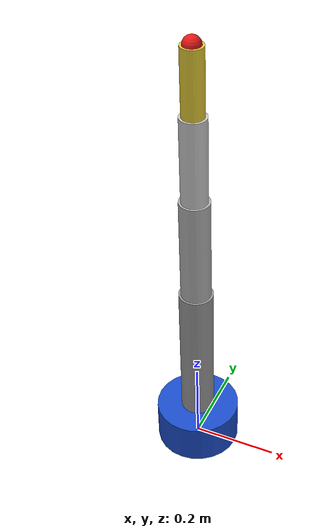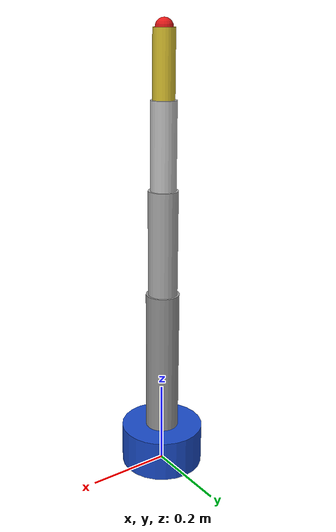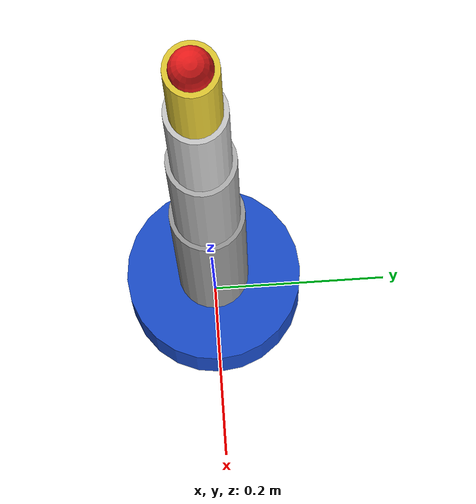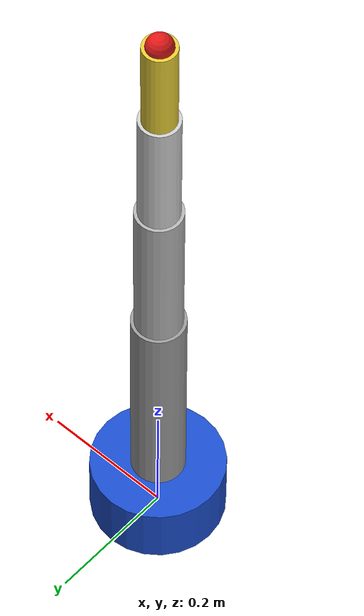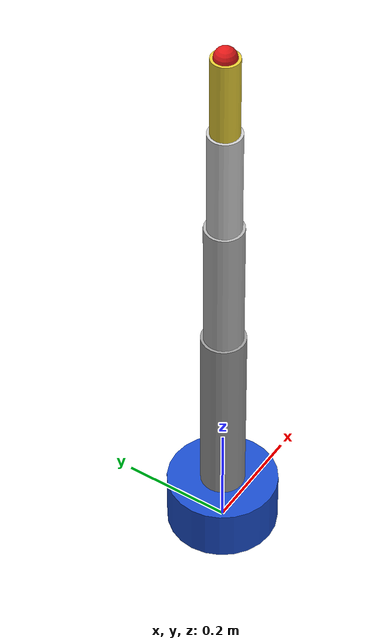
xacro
<?xml version="1.0"?>
<robot name="boat_arm">

  <!-- ========= BASE ========= -->
  <link name="base_link">
    <visual>
      <geometry>
        <!-- Liten "søyle" som base, 10 cm høy -->
        <cylinder length="0.10" radius="0.10"/>
      </geometry>
      <!-- Senter av sylinderen 0.05 m over base_link-origo -->
      <origin xyz="0 0 0.05" rpy="0 0 0"/>
      <material name="blue">
        <color rgba="0.1 0.3 0.8 1.0"/>
      </material>
    </visual>
  </link>

  <!-- ======= JOINT 1: Base rotasjon (yaw rundt z) ======= -->
  <joint name="joint1" type="revolute">
    <parent link="base_link"/>
    <child  link="link1"/>
    <!-- På toppen av basen: 0.10 m over origo -->
    <origin xyz="0 0 0.10" rpy="0 0 0"/>
    <axis xyz="0 0 1"/>
    <limit lower="-3.14" upper="3.14" effort="50" velocity="1.5"/>
  </joint>

  <link name="link1">
    <visual>
      <geometry>
        <!-- Første armsegment: 0.35 m -->
        <cylinder length="0.35" radius="0.04"/>
      </geometry>
      <!-- Link1-freame er i bunnen, så visual midt på: 0.35/2 = 0.175 -->
      <origin xyz="0 0 0.175" rpy="0 0 0"/>
      <material name="grey1">
        <color rgba="0.6 0.6 0.6 1.0"/>
      </material>
    </visual>
  </link>

  <!-- ======= JOINT 2: Skulder (bøyer frem/tilbake rundt y) ======= -->
  <joint name="joint2" type="revolute">
    <parent link="link1"/>
    <child  link="link2"/>
    <!-- På toppen av link1: 0.35 m over link1-bunnen -->
    <origin xyz="0 0 0.35" rpy="0 0 0"/>
    <axis xyz="0 1 0"/>
    <limit lower="-2.5" upper="2.5" effort="50" velocity="1.5"/>
  </joint>

  <link name="link2">
    <visual>
      <geometry>
        <!-- Andre segment: 0.25 m -->
        <cylinder length="0.25" radius="0.035"/>
      </geometry>
      <!-- Midt på: 0.25/2 = 0.125 -->
      <origin xyz="0 0 0.125" rpy="0 0 0"/>
      <material name="grey2">
        <color rgba="0.7 0.7 0.7 1.0"/>
      </material>
    </visual>
  </link>

  <!-- ======= JOINT 3: Albue (bøyer rundt y) ======= -->
  <joint name="joint3" type="revolute">
    <parent link="link2"/>
    <child  link="link3"/>
    <!-- På toppen av link2: 0.25 m -->
    <origin xyz="0 0 0.25" rpy="0 0 0"/>
    <axis xyz="0 1 0"/>
    <limit lower="-2.5" upper="2.5" effort="50" velocity="1.5"/>
  </joint>

  <link name="link3">
    <visual>
      <geometry>
        <!-- Tredje segment: 0.20 m -->
        <cylinder length="0.20" radius="0.03"/>
      </geometry>
      <!-- Midt på: 0.20/2 = 0.10 -->
      <origin xyz="0 0 0.10" rpy="0 0 0"/>
      <material name="grey3">
        <color rgba="0.8 0.8 0.8 1.0"/>
      </material>
    </visual>
  </link>

  <!-- ======= JOINT 4: Håndledd (bøyer rundt y) ======= -->
  <joint name="joint4" type="revolute">
    <parent link="link3"/>
    <child  link="link4"/>
    <!-- På toppen av link3: 0.20 m -->
    <origin xyz="0 0 0.20" rpy="0 0 0"/>
    <axis xyz="0 1 0"/>
    <limit lower="-3.14" upper="3.14" effort="20" velocity="2.0"/>
  </joint>

  <link name="link4">
    <visual>
      <geometry>
        <!-- Siste ledd: 0.15 m -->
        <cylinder length="0.15" radius="0.025"/>
      </geometry>
      <!-- Midt på: 0.15/2 = 0.075 -->
      <origin xyz="0 0 0.075" rpy="0 0 0"/>
      <material name="yellow">
        <color rgba="0.9 0.8 0.2 1.0"/>
      </material>
    </visual>
  </link>

  <!-- Ekstra: eget endeeffektor-frame helt på tuppen -->
  <joint name="ee_fixed" type="fixed">
    <parent link="link4"/>
    <child  link="end_effector"/>
    <!-- På toppen av link4: 0.15 m -->
    <origin xyz="0 0 0.15" rpy="0 0 0"/>
  </joint>

  <link name="end_effector">
    <visual>
      <geometry>
        <sphere radius="0.02"/>
      </geometry>
      <material name="red">
        <color rgba="0.9 0.1 0.1 1.0"/>
      </material>
    </visual>
  </link>

</robot>
